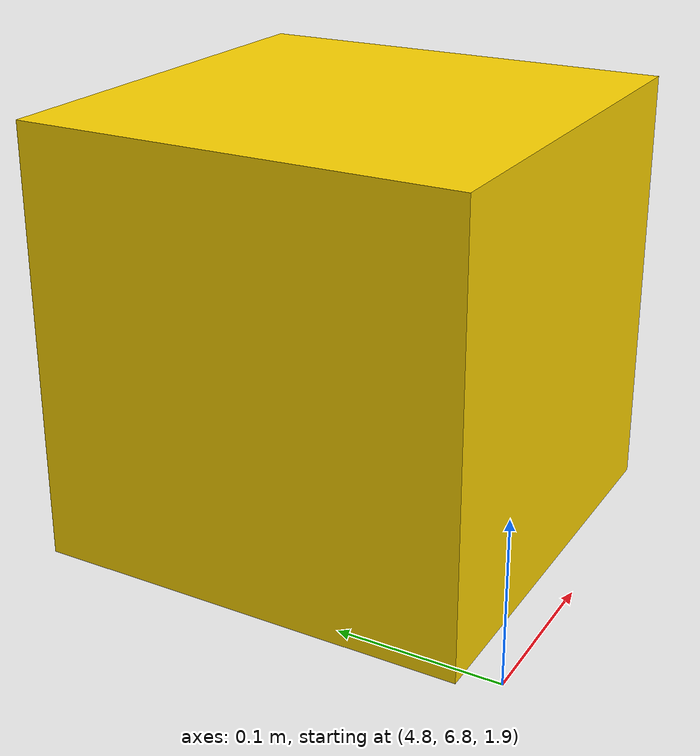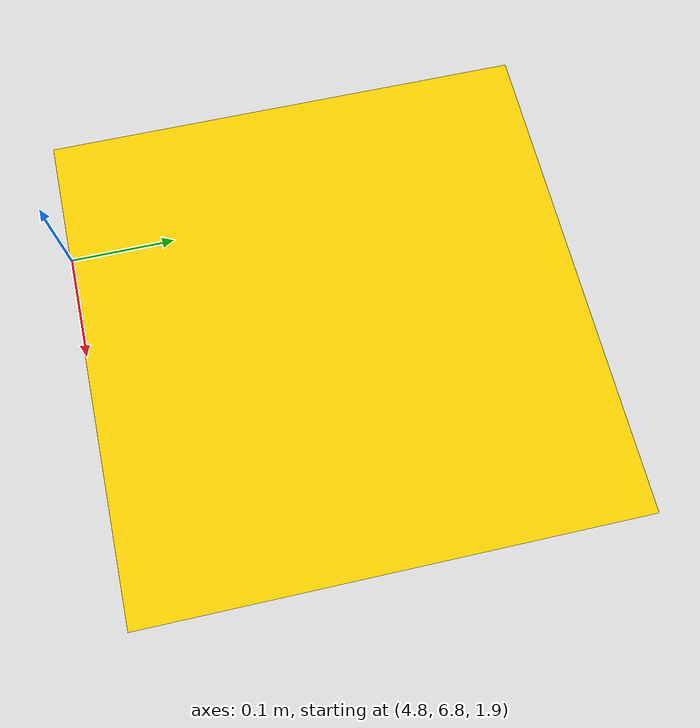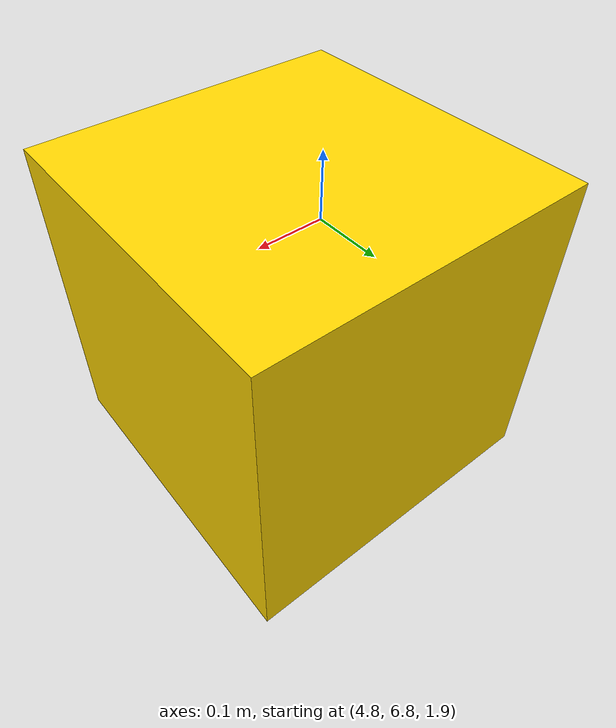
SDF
<?xml version="1.0" ?>
<sdf version="1.7">
    <world name="empty_world">
        <light type="directional" name="sun">
            <cast_shadows>true</cast_shadows>
            <pose>0 0 10 0 0 0</pose>
            <diffuse>0.8 0.8 0.8 1</diffuse>
            <specular>0.2 0.2 0.2 1</specular>
            <attenuation>
                <range>1000</range>
                <constant>0.9</constant>
                <linear>0.01</linear>
                <quadratic>0.001</quadratic>
            </attenuation>
            <direction>-0.5 0.1 -0.9</direction>
        </light>

        <model name="ground_plane">
            <static>true</static>
           <link name="link">
                <collision name="collision">
                    <geometry>
                        <plane>
                            <normal>0 0 1</normal>
                        </plane>
                    </geometry>
                </collision>
                <visual name="visual">
                    <geometry>
                        <plane>
                            <normal>0 0 1</normal>
                            <size>100 100</size>
                        </plane>
                    </geometry>
                    <material>
                        <ambient>0.8 0.8 0.8 1</ambient>
                        <diffuse>0.8 0.8 0.8 1</diffuse>
                        <specular>0.8 0.8 0.8 1</specular>
                    </material>
                </visual>
            </link>
        </model>

        <model name="gold_cube">
        <pose>5 7 2 0 0 0</pose>
        <static>true</static>

        <link name="link">
            <collision name="collision">
            <geometry>
                <box>
                <size>0.3 0.3 0.3</size>
                </box>
            </geometry>
            </collision>
            <visual name="visual">
            <geometry>
                <box>
                <size>0.3 0.3 0.3</size>
                </box>
            </geometry>
            <material>
                <ambient>1.0 0.84 0.0 1.0</ambient>
                <diffuse>1.0 0.84 0.0 1.0</diffuse>
                <specular>1 1 1 1</specular>
            </material>
            </visual>
        </link>

        <!-- Plugin per pubblicare la pose del cubo -->
        <plugin
            filename="ignition-gazebo-pose-publisher-system"
            name="ignition::gazebo::systems::PosePublisher">
            <publish_link_pose>true</publish_link_pose>
            <use_pose_vector_msg>false</use_pose_vector_msg>
            <update_frequency>1</update_frequency>
        </plugin>
        </model>
    </world>
</sdf>
